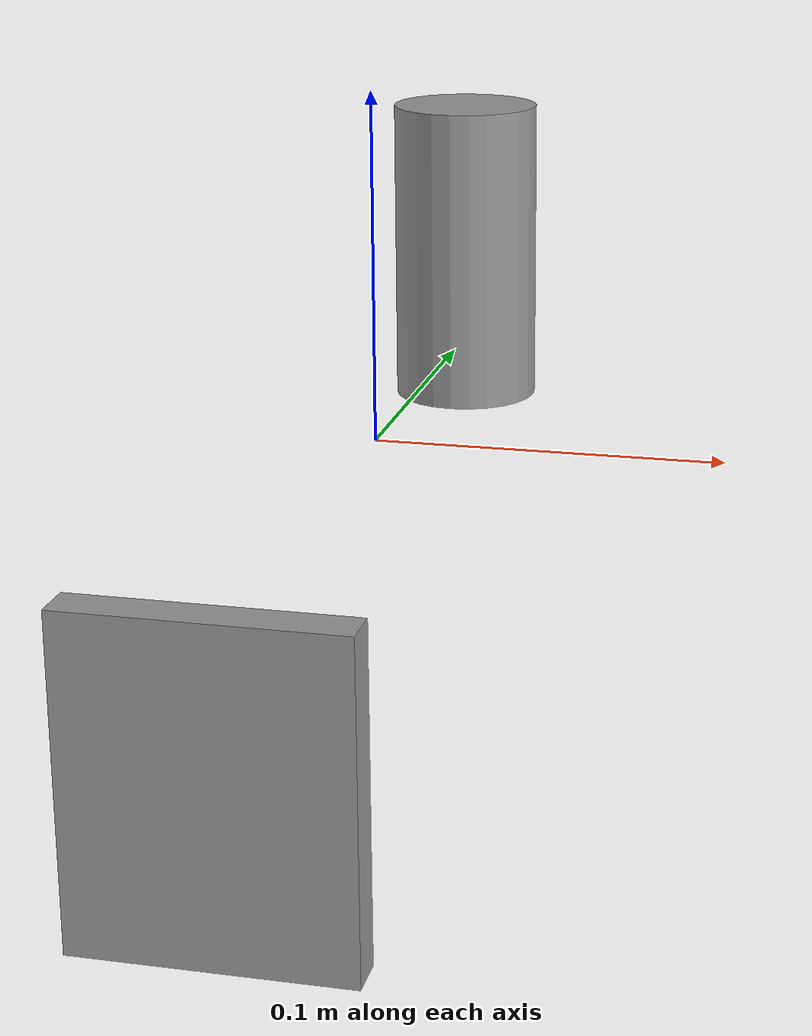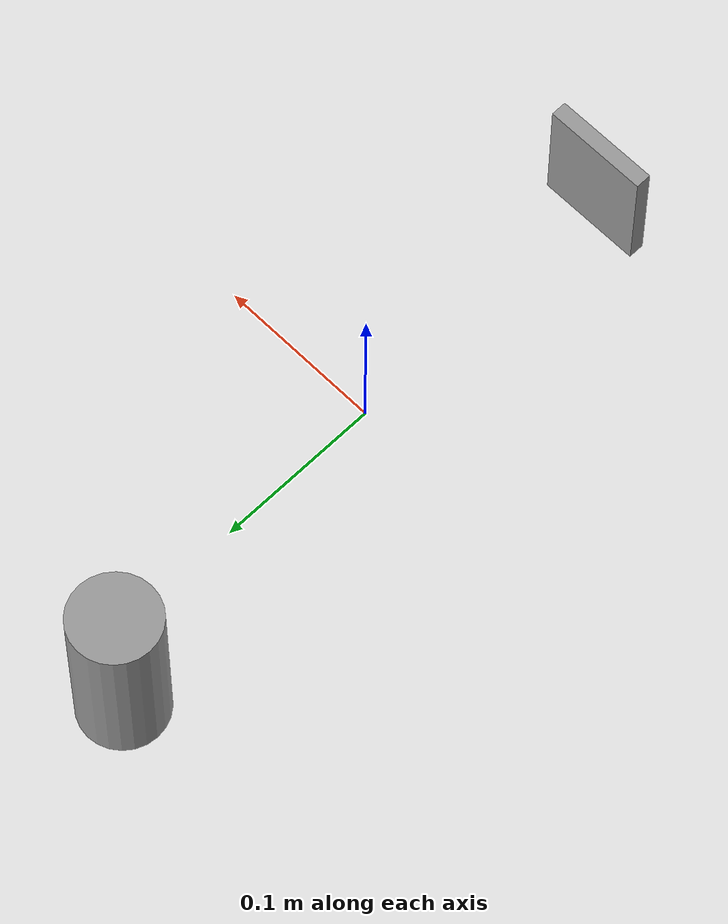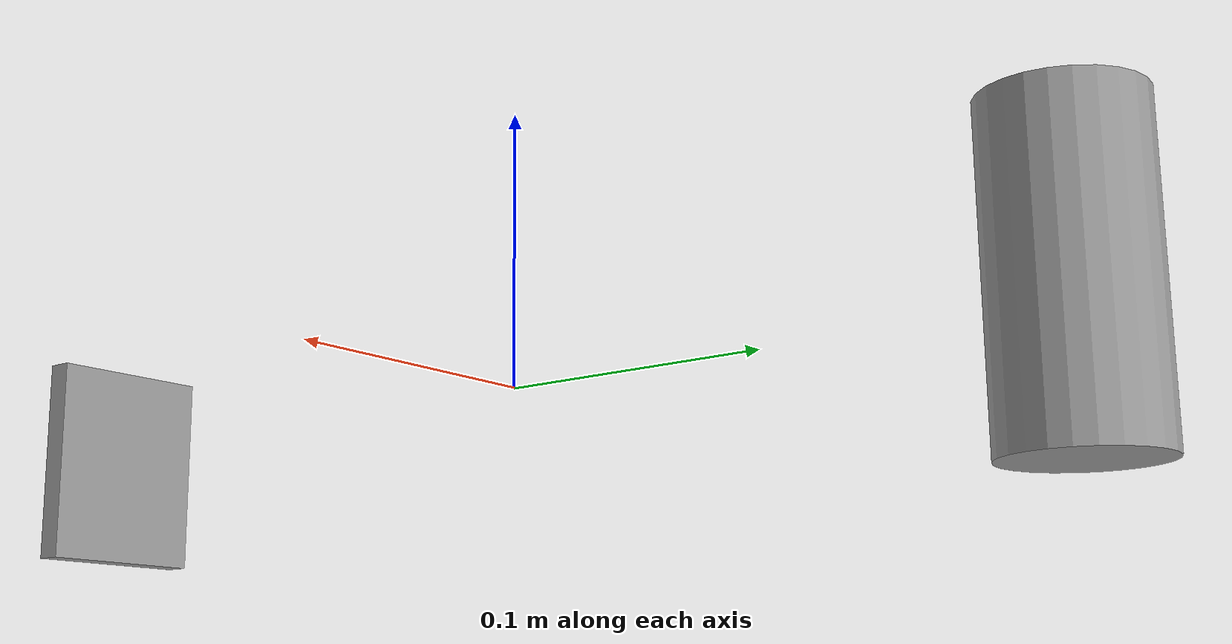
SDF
<?xml version='1.0'?>
<sdf version='1.6'>
  <model name='Obstacles'>
    <link name='link_1'>
      <inertial>
        <mass>0.000290851</mass>
        <inertia>
          <ixx>3.32221e-07</ixx>
          <ixy>0</ixy>
          <ixz>0</ixz>
          <iyy>3.32221e-07</iyy>
          <iyz>0</iyz>
          <izz>9.78592e-08</izz>
        </inertia>
        <pose frame=''>0 0 0 0 -0 0</pose>
      </inertial>
      <pose frame=''>-0.017512 0.19526 0.01203 0 -0 0</pose>
      <visual name='visual'>
        <pose frame=''>0 0 0 0 -0 0</pose>
        <geometry>
          <cylinder>
            <radius>0.0259406</radius>
            <length>0.108112</length>
          </cylinder>
        </geometry>
        <material>
          <lighting>1</lighting>
          <script>
            <uri>file://media/materials/scripts/gazebo.material</uri>
            <name>Gazebo/Grey</name>
          </script>
          <shader type='pixel'/>
        </material>
        <transparency>0</transparency>
        <cast_shadows>1</cast_shadows>
      </visual>
      <collision name='collision'>
        <laser_retro>0</laser_retro>
        <max_contacts>10</max_contacts>
        <pose frame=''>0 0 0 0 -0 0</pose>
        <geometry>
          <cylinder>
            <radius>0.025941</radius>
            <length>0.108112</length>
          </cylinder>
        </geometry>
        <surface>
          <friction>
            <ode>
              <mu>1</mu>
              <mu2>1</mu2>
              <fdir1>0 0 0</fdir1>
              <slip1>0</slip1>
              <slip2>0</slip2>
            </ode>
            <torsional>
              <coefficient>1</coefficient>
              <patch_radius>0</patch_radius>
              <surface_radius>0</surface_radius>
              <use_patch_radius>1</use_patch_radius>
              <ode>
                <slip>0</slip>
              </ode>
            </torsional>
          </friction>
          <bounce>
            <restitution_coefficient>0</restitution_coefficient>
            <threshold>1e+06</threshold>
          </bounce>
          <contact>
            <collide_without_contact>0</collide_without_contact>
            <collide_without_contact_bitmask>1</collide_without_contact_bitmask>
            <collide_bitmask>1</collide_bitmask>
            <ode>
              <soft_cfm>0</soft_cfm>
              <soft_erp>0.2</soft_erp>
              <kp>1e+13</kp>
              <kd>1</kd>
              <max_vel>0.01</max_vel>
              <min_depth>0</min_depth>
            </ode>
            <bullet>
              <split_impulse>1</split_impulse>
              <split_impulse_penetration_threshold>-0.01</split_impulse_penetration_threshold>
              <soft_cfm>0</soft_cfm>
              <soft_erp>0.2</soft_erp>
              <kp>1e+13</kp>
              <kd>1</kd>
            </bullet>
          </contact>
        </surface>
      </collision>
    </link>
    <link name='link_2'>
      <inertial>
        <mass>4.73395e-05</mass>
        <inertia>
          <ixx>2.36741e-08</ixx>
          <ixy>0</ixy>
          <ixz>0</ixz>
          <iyy>3.9374e-08</iyy>
          <iyz>0</iyz>
          <izz>1.64341e-08</izz>
        </inertia>
        <pose frame=''>0 0 0 0 -0 0</pose>
      </inertial>
      <pose frame=''>0.017512 -0.195259 -0.01203 0 -0 0</pose>
      <visual name='visual'>
        <pose frame=''>0 0 0 0 -0 0</pose>
        <geometry>
          <box>
            <size>0.063819 0.009646 0.076864</size>
          </box>
        </geometry>
        <material>
          <lighting>1</lighting>
          <script>
            <uri>file://media/materials/scripts/gazebo.material</uri>
            <name>Gazebo/Grey</name>
          </script>
          <shader type='pixel'/>
        </material>
        <transparency>0</transparency>
        <cast_shadows>1</cast_shadows>
      </visual>
      <collision name='collision'>
        <laser_retro>0</laser_retro>
        <max_contacts>10</max_contacts>
        <pose frame=''>0 0 0 0 -0 0</pose>
        <geometry>
          <box>
            <size>0.063819 0.009646 0.076864</size>
          </box>
        </geometry>
        <surface>
          <friction>
            <ode>
              <mu>1</mu>
              <mu2>1</mu2>
              <fdir1>0 0 0</fdir1>
              <slip1>0</slip1>
              <slip2>0</slip2>
            </ode>
            <torsional>
              <coefficient>1</coefficient>
              <patch_radius>0</patch_radius>
              <surface_radius>0</surface_radius>
              <use_patch_radius>1</use_patch_radius>
              <ode>
                <slip>0</slip>
              </ode>
            </torsional>
          </friction>
          <bounce>
            <restitution_coefficient>0</restitution_coefficient>
            <threshold>1e+06</threshold>
          </bounce>
          <contact>
            <collide_without_contact>0</collide_without_contact>
            <collide_without_contact_bitmask>1</collide_without_contact_bitmask>
            <collide_bitmask>1</collide_bitmask>
            <ode>
              <soft_cfm>0</soft_cfm>
              <soft_erp>0.2</soft_erp>
              <kp>1e+13</kp>
              <kd>1</kd>
              <max_vel>0.01</max_vel>
              <min_depth>0</min_depth>
            </ode>
            <bullet>
              <split_impulse>1</split_impulse>
              <split_impulse_penetration_threshold>-0.01</split_impulse_penetration_threshold>
              <soft_cfm>0</soft_cfm>
              <soft_erp>0.2</soft_erp>
              <kp>1e+13</kp>
              <kd>1</kd>
            </bullet>
          </contact>
        </surface>
      </collision>
    </link>
    <static>0</static>
    <allow_auto_disable>1</allow_auto_disable>
  </model>
</sdf>
